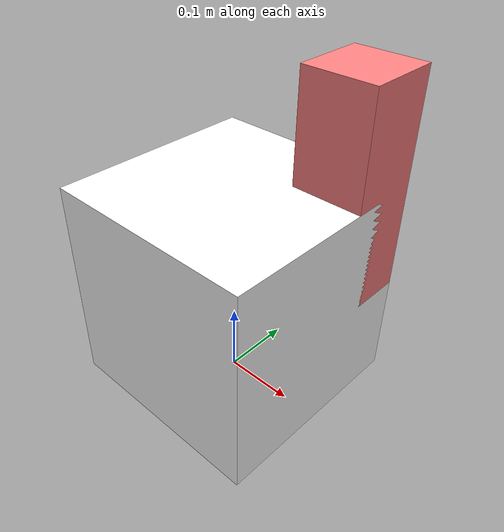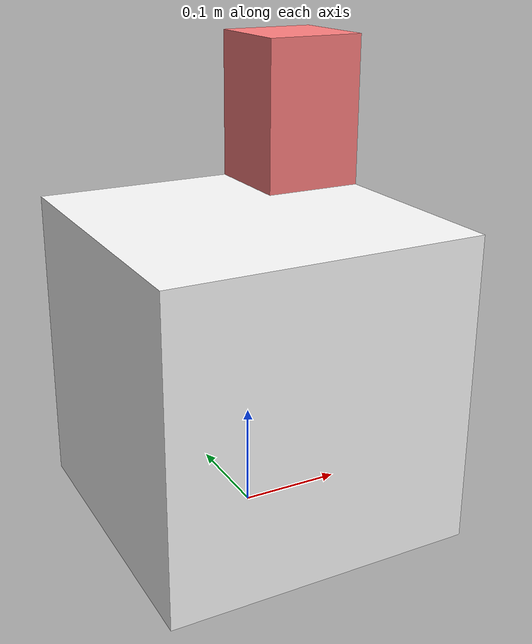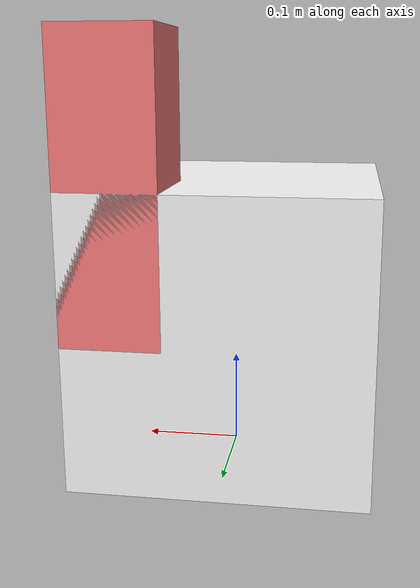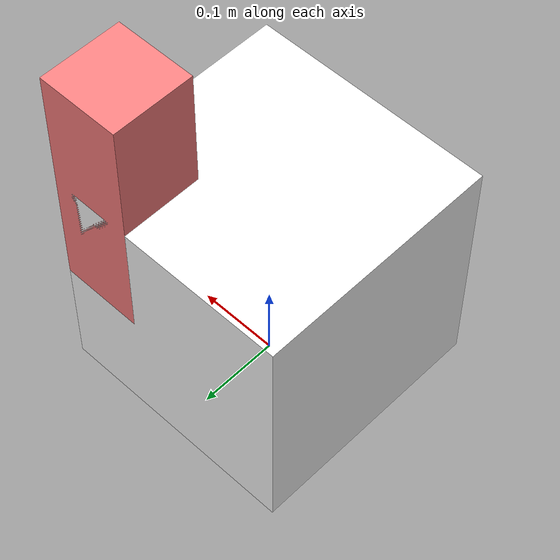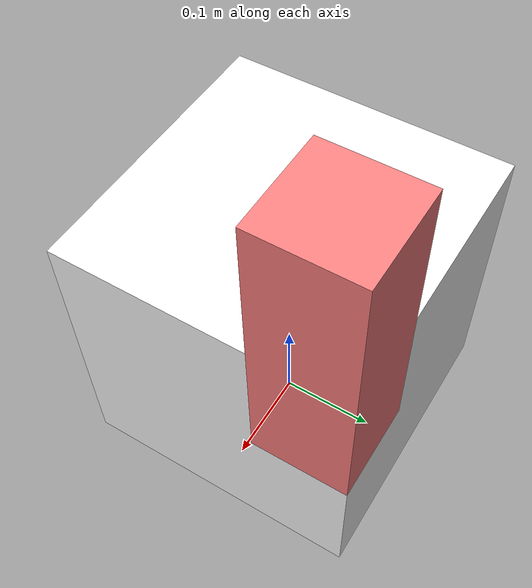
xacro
<?xml version="1.0" encoding="UTF-8"?>
<robot name="myrobot" xmlns:xacro="http://wiki.ros.org/xacro">
    <xacro:include filename="$(find ps4_robot_control)/urdf/utils.xacro" />

    <link name="world" />
    <xacro:f_joint name="world_joint" parent="world" child="base_link" />

    <link name="base_link" />
    <xacro:f_joint name="joint" xyz="0 0 0" parent="base_link" child="box" />
    <link name="box">
        <xacro:_box size="0.3 0.3 0.3" xyz="0 0 0.15" />
    </link>
    <xacro:f_joint name="joint_1" xyz="0.1 0.1 0.3" parent="box" child="box_1" />
    <link name="box_1">
        <xacro:_box size="0.1 0.1 0.3" color="red"/>
    </link>
</robot>

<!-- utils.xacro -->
<robot xmlns:xacro="http://www.ros.org/wiki/xacro">
    <!-- colors definition -->
    <material name="red">
        <!-- for revolute -->
        <color rgba="1.0 0.5 0.5 1.0" />
    </material>
    <material name="green">
        <!-- for prismatic -->
        <color rgba="0.5 1.0 0.5 1.0" />
    </material>
    <material name="blue">
        <color rgba="0.5 0.5 1.0 1.0" />
    </material>
    <material name="white">
        <color rgba="1.0 1.0 1.0 1.0" />
    </material>
    <material name="gray">
        <color rgba="0.8 0.8 0.8 1.0" />
    </material>

    <!-- name=joint is alreadey used in other files? -->
    <xacro:macro name="f_joint" params="name parent child xyz:='0 0 0' rpy:='0 0 0'">
        <joint name="${name}" type="fixed">
            <origin xyz="${xyz}" rpy="${rpy}" />
            <parent link="${parent}" />
            <child link="${child}" />
        </joint>
    </xacro:macro>

    <xacro:macro name="_gazebo_joint" params="joint trans reduction:=1">
        <transmission name="${joint}_trans">
            <type>transmission_interface/SimpleTransmission</type>
            <joint name="${joint}">
                <hardwareInterface>hardware_interface/${trans}</hardwareInterface>
            </joint>
            <actuator name="${joint}_motor">
                <hardwareInterface>hardware_interface/${trans}</hardwareInterface>
                <mechanicalReduction>${reduction}</mechanicalReduction>
            </actuator>
        </transmission>
    </xacro:macro>

    <xacro:macro name="a_joint" params="name parent child type axis xyz:='0 0 0' rpy:='0 0 0' eff:=500 low:=-2.967 up:=2.967 vel:=1 damp:=0 fric:=0 trans:=PositionJointInterface">
        <joint name="${name}" type="${type}">
            <origin xyz="${xyz}" rpy="${rpy}" />
            <parent link="${parent}" />
            <child link="${child}" />
            <axis xyz="${axis}" />
            <limit effort="${eff}" lower="${low}" upper="${up}" velocity="${vel}" />
            <dynamics damping="${damp}" friction="${fric}" />
        </joint>

        <xacro:_gazebo_joint joint="${name}" trans="${trans}" />

    </xacro:macro>

    <xacro:macro name="_box" params="xyz:='0 0 0' rpy:='0 0 0' size:='0.1 0.1 0.1' mass:=1 color=white">
        <visual>
            <origin rpy="${rpy}" xyz="${xyz}" />
            <geometry>
                <box size="${size}" />
            </geometry>
            <material name="${color}" />
        </visual>
        <collision>
            <origin rpy="${rpy}" xyz="${xyz}" />
            <geometry>
                <box size="${size}" />
            </geometry>
        </collision>
        <inertial>
            <mass value="${mass}" />
            <origin rpy="${rpy}" xyz="${xyz}" />
            <inertia ixx="1" ixy="0" ixz="0" iyy="1" iyz="0" izz="1" />
        </inertial>
    </xacro:macro>

    <xacro:macro name="_cylinder" params="xyz:='0 0 0' rpy:='0 0 0' radius:=0.1 length=0.1  mass:=1 color=white">
        <visual>
            <origin rpy="${rpy}" xyz="${xyz}" />
            <geometry>
                <cylinder radius="${radius}" length="${length}" />
            </geometry>
            <material name="${color}" />
        </visual>
        <collision>
            <origin rpy="${rpy}" xyz="${xyz}" />
            <geometry>
                <cylinder radius="${radius}" length="${length}" />
            </geometry>
        </collision>
        <inertial>
            <mass value="${mass}" />
            <origin rpy="${rpy}" xyz="${xyz}" />
            <inertia ixx="1" ixy="0" ixz="0" iyy="1" iyz="0" izz="1" />
        </inertial>
    </xacro:macro>

    <xacro:macro name="box_link" params="name xyz:='0 0 0' rpy:='0 0 0' size:='0.1 0.1 0.1' mass:=1 color=white">
        <link name="${name}">
            <xacro:_box xyz="${xyz}" rpy="${rpy}" size="${size}" mass="${mass}" color="${color}" />
        </link>
    </xacro:macro>

    <xacro:macro name="cylinder_link" params="name xyz:='0 0 0' rpy:='0 0 0' radius:=0.1 length:=0.1 mass:=1 color=white">
        <link name="${name}">
            <xacro:_box xyz="${xyz}" rpy="${rpy}" radius="${radius}" length="${length}" mass="${mass}" color="${color}" />
        </link>
    </xacro:macro>
</robot>
